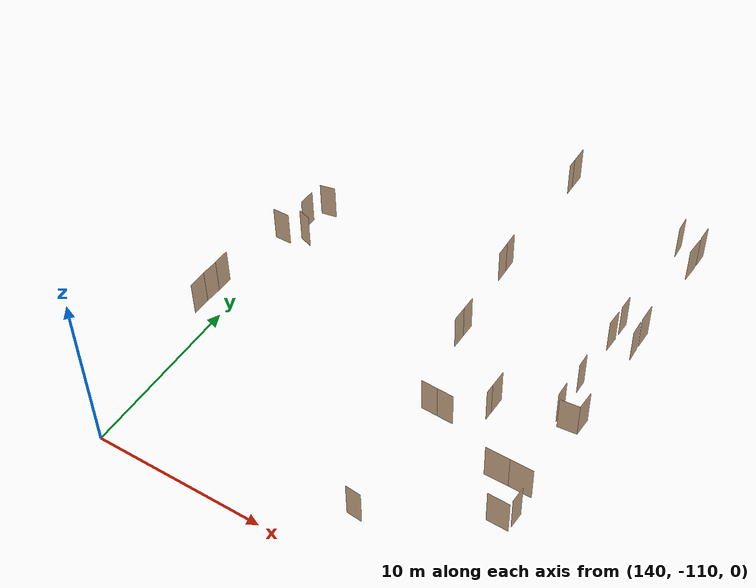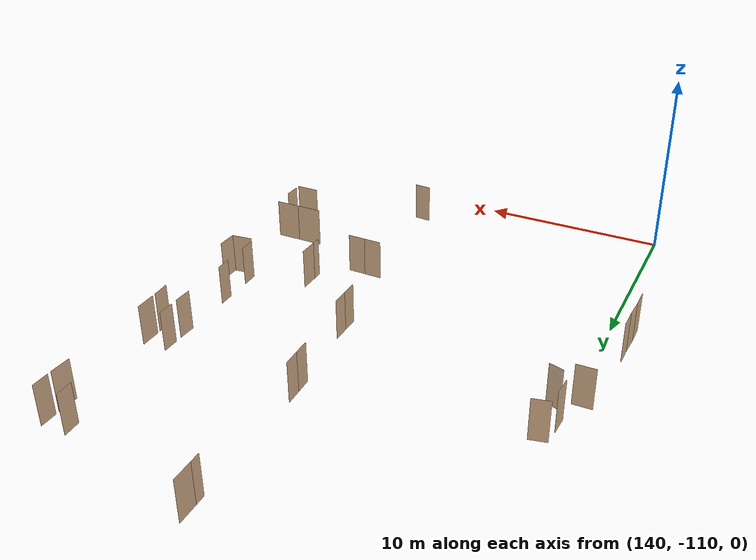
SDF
<sdf version="1.7">
 <world name="sim_world">
  <model name="puerta74">
   <pose>159.7936923329364 -103.79587595033634 0.0 0 0 3.1317567962634545</pose>
   <link name="right">
    <pose>0 0 1.11 0 0 0</pose>
    <visual name="right_visual">
     <geometry><box><size>1.256180677242002 0.03 2.2</size></box></geometry>
     <material>
      <ambient>0.5 0.25 0 0.6</ambient>
      <diffuse>0.5 0.25 0 0.6</diffuse>
      <pbr><metal><metalness>0.0</metalness></metal></pbr>
     </material>
    </visual>
    <collision name="right_collision">
     <geometry><box><size>1.256180677242002 0.03 2.2</size></box></geometry>
     <surface><contact><collide_bitmask>0x02</collide_bitmask></contact></surface>
    </collision>
    <inertial>
     <mass>50.0</mass>
     <inertia><ixx>20.17041666666667</ixx><iyy>26.741624557817403</iyy><izz>6.57870789115073</izz></inertia>
    </inertial>
   </link>
   <joint name="right_joint" type="revolute">
    <parent>world</parent>
    <child>right</child>
    <axis><xyz>0 0 -1</xyz><limit><lower>0</lower><upper>1.57</upper></limit></axis>
    <pose>0.6330903386210011 0 0 0 0 0</pose>
   </joint>
   <plugin name="register_component" filename="libregister_component.so">
    <component name="Door">
     <v_max_door>0.5</v_max_door>
     <a_max_door>0.3</a_max_door>
     <a_nom_door>0.15</a_nom_door>
     <dx_min_door>0.01</dx_min_door>
     <f_max_door>500.0</f_max_door>
     <ros_interface>true</ros_interface>
     <door name="puerta74" type="SwingDoor" left_joint_name="empty_joint" right_joint_name="right_joint"/>
    </component>
   </plugin>
  </model>
  <model name="puerta75">
   <pose>160.438532642766 -103.07871120292492 0.0 0 0 -1.5966220334203785</pose>
   <link name="right">
    <pose>0 0 1.11 0 0 0</pose>
    <visual name="right_visual">
     <geometry><box><size>0.9024168142661404 0.03 2.2</size></box></geometry>
     <material>
      <ambient>0.5 0.25 0 0.6</ambient>
      <diffuse>0.5 0.25 0 0.6</diffuse>
      <pbr><metal><metalness>0.0</metalness></metal></pbr>
     </material>
    </visual>
    <collision name="right_collision">
     <geometry><box><size>0.9024168142661404 0.03 2.2</size></box></geometry>
     <surface><contact><collide_bitmask>0x02</collide_bitmask></contact></surface>
    </collision>
    <inertial>
     <mass>50.0</mass>
     <inertia><ixx>20.17041666666667</ixx><iyy>23.559817111126044</iyy><izz>3.3969004444593742</izz></inertia>
    </inertial>
   </link>
   <joint name="right_joint" type="revolute">
    <parent>world</parent>
    <child>right</child>
    <axis><xyz>0 0 -1</xyz><limit><lower>0</lower><upper>1.57</upper></limit></axis>
    <pose>0.4562084071330702 0 0 0 0 0</pose>
   </joint>
   <plugin name="register_component" filename="libregister_component.so">
    <component name="Door">
     <v_max_door>0.5</v_max_door>
     <a_max_door>0.3</a_max_door>
     <a_nom_door>0.15</a_nom_door>
     <dx_min_door>0.01</dx_min_door>
     <f_max_door>500.0</f_max_door>
     <ros_interface>true</ros_interface>
     <door name="puerta75" type="SwingDoor" left_joint_name="empty_joint" right_joint_name="right_joint"/>
    </component>
   </plugin>
  </model>
  <model name="puerta76">
   <pose>159.75077730889134 -101.48174638903727 0.0 0 0 3.141592653589793</pose>
   <link name="right">
    <pose>0 0 1.11 0 0 0</pose>
    <visual name="right_visual">
     <geometry><box><size>1.3252042039894059 0.03 2.2</size></box></geometry>
     <material>
      <ambient>0.5 0.25 0 0.6</ambient>
      <diffuse>0.5 0.25 0 0.6</diffuse>
      <pbr><metal><metalness>0.0</metalness></metal></pbr>
     </material>
    </visual>
    <collision name="right_collision">
     <geometry><box><size>1.3252042039894059 0.03 2.2</size></box></geometry>
     <surface><contact><collide_bitmask>0x02</collide_bitmask></contact></surface>
    </collision>
    <inertial>
     <mass>50.0</mass>
     <inertia><ixx>20.17041666666667</ixx><iyy>27.484025759463318</iyy><izz>7.321109092796646</izz></inertia>
    </inertial>
   </link>
   <joint name="right_joint" type="revolute">
    <parent>world</parent>
    <child>right</child>
    <axis><xyz>0 0 -1</xyz><limit><lower>0</lower><upper>1.57</upper></limit></axis>
    <pose>0.6676021019947029 0 0 0 0 0</pose>
   </joint>
   <plugin name="register_component" filename="libregister_component.so">
    <component name="Door">
     <v_max_door>0.5</v_max_door>
     <a_max_door>0.3</a_max_door>
     <a_nom_door>0.15</a_nom_door>
     <dx_min_door>0.01</dx_min_door>
     <f_max_door>500.0</f_max_door>
     <ros_interface>true</ros_interface>
     <door name="puerta76" type="SwingDoor" left_joint_name="empty_joint" right_joint_name="right_joint"/>
    </component>
   </plugin>
  </model>
  <model name="puerta77">
   <pose>158.38399690338645 -101.48174638903727 0.0 0 0 0.0</pose>
   <link name="right">
    <pose>0 0 1.11 0 0 0</pose>
    <visual name="right_visual">
     <geometry><box><size>1.3883566070203892 0.03 2.2</size></box></geometry>
     <material>
      <ambient>0.5 0.25 0 0.6</ambient>
      <diffuse>0.5 0.25 0 0.6</diffuse>
      <pbr><metal><metalness>0.0</metalness></metal></pbr>
     </material>
    </visual>
    <collision name="right_collision">
     <geometry><box><size>1.3883566070203892 0.03 2.2</size></box></geometry>
     <surface><contact><collide_bitmask>0x02</collide_bitmask></contact></surface>
    </collision>
    <inertial>
     <mass>50.0</mass>
     <inertia><ixx>20.17041666666667</ixx><iyy>28.1980586177382</iyy><izz>8.03514195107153</izz></inertia>
    </inertial>
   </link>
   <joint name="right_joint" type="revolute">
    <parent>world</parent>
    <child>right</child>
    <axis><xyz>0 0 -1</xyz><limit><lower>0</lower><upper>1.57</upper></limit></axis>
    <pose>0.6991783035101946 0 0 0 0 0</pose>
   </joint>
   <plugin name="register_component" filename="libregister_component.so">
    <component name="Door">
     <v_max_door>0.5</v_max_door>
     <a_max_door>0.3</a_max_door>
     <a_nom_door>0.15</a_nom_door>
     <dx_min_door>0.01</dx_min_door>
     <f_max_door>500.0</f_max_door>
     <ros_interface>true</ros_interface>
     <door name="puerta77" type="SwingDoor" left_joint_name="empty_joint" right_joint_name="right_joint"/>
    </component>
   </plugin>
  </model>
  <model name="puerta78">
   <pose>159.89001973249628 -96.8544759949343 0.0 0 0 0.10396412360311867</pose>
   <link name="right">
    <pose>0 0 1.11 0 0 0</pose>
    <visual name="right_visual">
     <geometry><box><size>1.1166703581580366 0.03 2.2</size></box></geometry>
     <material>
      <ambient>0.5 0.25 0 0.6</ambient>
      <diffuse>0.5 0.25 0 0.6</diffuse>
      <pbr><metal><metalness>0.0</metalness></metal></pbr>
     </material>
    </visual>
    <collision name="right_collision">
     <geometry><box><size>1.1166703581580366 0.03 2.2</size></box></geometry>
     <surface><contact><collide_bitmask>0x02</collide_bitmask></contact></surface>
    </collision>
    <inertial>
     <mass>50.0</mass>
     <inertia><ixx>20.17041666666667</ixx><iyy>25.36230286995333</iyy><izz>5.199386203286657</izz></inertia>
    </inertial>
   </link>
   <joint name="right_joint" type="revolute">
    <parent>world</parent>
    <child>right</child>
    <axis><xyz>0 0 1</xyz><limit><lower>0</lower><upper>1.3955555555555557</upper></limit></axis>
    <pose>0.5633351790790183 0 0 0 0 0</pose>
   </joint>
   <plugin name="register_component" filename="libregister_component.so">
    <component name="Door">
     <v_max_door>0.5</v_max_door>
     <a_max_door>0.3</a_max_door>
     <a_nom_door>0.15</a_nom_door>
     <dx_min_door>0.01</dx_min_door>
     <f_max_door>500.0</f_max_door>
     <ros_interface>true</ros_interface>
     <door name="puerta78" type="SwingDoor" left_joint_name="empty_joint" right_joint_name="right_joint"/>
    </component>
   </plugin>
  </model>
  <model name="puerta79">
   <pose>160.46398714232214 -96.26128097139416 0.0 0 0 -1.596362178234018</pose>
   <link name="right">
    <pose>0 0 1.11 0 0 0</pose>
    <visual name="right_visual">
     <geometry><box><size>1.0598172473930818 0.03 2.2</size></box></geometry>
     <material>
      <ambient>0.5 0.25 0 0.6</ambient>
      <diffuse>0.5 0.25 0 0.6</diffuse>
      <pbr><metal><metalness>0.0</metalness></metal></pbr>
     </material>
    </visual>
    <collision name="right_collision">
     <geometry><box><size>1.0598172473930818 0.03 2.2</size></box></geometry>
     <surface><contact><collide_bitmask>0x02</collide_bitmask></contact></surface>
    </collision>
    <inertial>
     <mass>50.0</mass>
     <inertia><ixx>20.17041666666667</ixx><iyy>24.846719157799374</iyy><izz>4.683802491132703</izz></inertia>
    </inertial>
   </link>
   <joint name="right_joint" type="revolute">
    <parent>world</parent>
    <child>right</child>
    <axis><xyz>0 0 -1</xyz><limit><lower>0</lower><upper>1.57</upper></limit></axis>
    <pose>0.5349086236965409 0 0 0 0 0</pose>
   </joint>
   <plugin name="register_component" filename="libregister_component.so">
    <component name="Door">
     <v_max_door>0.5</v_max_door>
     <a_max_door>0.3</a_max_door>
     <a_nom_door>0.15</a_nom_door>
     <dx_min_door>0.01</dx_min_door>
     <f_max_door>500.0</f_max_door>
     <ros_interface>true</ros_interface>
     <door name="puerta79" type="SwingDoor" left_joint_name="empty_joint" right_joint_name="right_joint"/>
    </component>
   </plugin>
  </model>
  <model name="puerta80">
   <pose>159.1357461113518 -96.21222320861327 0.0 0 0 -1.5533127589746702</pose>
   <link name="right">
    <pose>0 0 1.11 0 0 0</pose>
    <visual name="right_visual">
     <geometry><box><size>0.8732167888799909 0.03 2.2</size></box></geometry>
     <material>
      <ambient>0.5 0.25 0 0.6</ambient>
      <diffuse>0.5 0.25 0 0.6</diffuse>
      <pbr><metal><metalness>0.0</metalness></metal></pbr>
     </material>
    </visual>
    <collision name="right_collision">
     <geometry><box><size>0.8732167888799909 0.03 2.2</size></box></geometry>
     <surface><contact><collide_bitmask>0x02</collide_bitmask></contact></surface>
    </collision>
    <inertial>
     <mass>50.0</mass>
     <inertia><ixx>20.17041666666667</ixx><iyy>23.34378150159118</iyy><izz>3.180864834924511</izz></inertia>
    </inertial>
   </link>
   <joint name="right_joint" type="revolute">
    <parent>world</parent>
    <child>right</child>
    <axis><xyz>0 0 1</xyz><limit><lower>0</lower><upper>1.57</upper></limit></axis>
    <pose>0.44160839443999544 0 0 0 0 0</pose>
   </joint>
   <plugin name="register_component" filename="libregister_component.so">
    <component name="Door">
     <v_max_door>0.5</v_max_door>
     <a_max_door>0.3</a_max_door>
     <a_nom_door>0.15</a_nom_door>
     <dx_min_door>0.01</dx_min_door>
     <f_max_door>500.0</f_max_door>
     <ros_interface>true</ros_interface>
     <door name="puerta80" type="SwingDoor" left_joint_name="empty_joint" right_joint_name="right_joint"/>
    </component>
   </plugin>
  </model>
  <model name="puerta81">
   <pose>159.12099933103045 -93.97853828062215 0.0 0 0 1.587739558421069</pose>
   <link name="right">
    <pose>0 0 1.11 0 0 0</pose>
    <visual name="right_visual">
     <geometry><box><size>0.8194308536880951 0.03 2.2</size></box></geometry>
     <material>
      <ambient>0.5 0.25 0 0.6</ambient>
      <diffuse>0.5 0.25 0 0.6</diffuse>
      <pbr><metal><metalness>0.0</metalness></metal></pbr>
     </material>
    </visual>
    <collision name="right_collision">
     <geometry><box><size>0.8194308536880951 0.03 2.2</size></box></geometry>
     <surface><contact><collide_bitmask>0x02</collide_bitmask></contact></surface>
    </collision>
    <inertial>
     <mass>50.0</mass>
     <inertia><ixx>20.17041666666667</ixx><iyy>22.964445516566673</iyy><izz>2.8015288499000013</izz></inertia>
    </inertial>
   </link>
   <joint name="right_joint" type="revolute">
    <parent>world</parent>
    <child>right</child>
    <axis><xyz>0 0 -1</xyz><limit><lower>0</lower><upper>1.57</upper></limit></axis>
    <pose>0.41471542684404755 0 0 0 0 0</pose>
   </joint>
   <plugin name="register_component" filename="libregister_component.so">
    <component name="Door">
     <v_max_door>0.5</v_max_door>
     <a_max_door>0.3</a_max_door>
     <a_nom_door>0.15</a_nom_door>
     <dx_min_door>0.01</dx_min_door>
     <f_max_door>500.0</f_max_door>
     <ros_interface>true</ros_interface>
     <door name="puerta81" type="SwingDoor" left_joint_name="empty_joint" right_joint_name="right_joint"/>
    </component>
   </plugin>
  </model>
  <model name="puerta82">
   <pose>160.45645597633776 -90.47160245541252 0.0 0 0 1.6164788078695695</pose>
   <link name="right">
    <pose>0 0 1.11 0 0 0</pose>
    <visual name="right_visual">
     <geometry><box><size>0.9186907120669721 0.03 2.2</size></box></geometry>
     <material>
      <ambient>0.5 0.25 0 0.6</ambient>
      <diffuse>0.5 0.25 0 0.6</diffuse>
      <pbr><metal><metalness>0.0</metalness></metal></pbr>
     </material>
    </visual>
    <collision name="right_collision">
     <geometry><box><size>0.9186907120669721 0.03 2.2</size></box></geometry>
     <surface><contact><collide_bitmask>0x02</collide_bitmask></contact></surface>
    </collision>
    <inertial>
     <mass>50.0</mass>
     <inertia><ixx>20.17041666666667</ixx><iyy>23.683302601825506</iyy><izz>3.5203859351588345</izz></inertia>
    </inertial>
   </link>
   <joint name="right_joint" type="revolute">
    <parent>world</parent>
    <child>right</child>
    <axis><xyz>0 0 1</xyz><limit><lower>0</lower><upper>1.57</upper></limit></axis>
    <pose>0.46434535603348603 0 0 0 0 0</pose>
   </joint>
   <plugin name="register_component" filename="libregister_component.so">
    <component name="Door">
     <v_max_door>0.5</v_max_door>
     <a_max_door>0.3</a_max_door>
     <a_nom_door>0.15</a_nom_door>
     <dx_min_door>0.01</dx_min_door>
     <f_max_door>500.0</f_max_door>
     <ros_interface>true</ros_interface>
     <door name="puerta82" type="SwingDoor" left_joint_name="empty_joint" right_joint_name="right_joint"/>
    </component>
   </plugin>
  </model>
  <model name="puerta83">
   <pose>159.1280466511555 -90.49268130545818 0.0 0 0 1.5417831272589189</pose>
   <link name="right">
    <pose>0 0 1.11 0 0 0</pose>
    <visual name="right_visual">
     <geometry><box><size>0.9602878923284857 0.03 2.2</size></box></geometry>
     <material>
      <ambient>0.5 0.25 0 0.6</ambient>
      <diffuse>0.5 0.25 0 0.6</diffuse>
      <pbr><metal><metalness>0.0</metalness></metal></pbr>
     </material>
    </visual>
    <collision name="right_collision">
     <geometry><box><size>0.9602878923284857 0.03 2.2</size></box></geometry>
     <surface><contact><collide_bitmask>0x02</collide_bitmask></contact></surface>
    </collision>
    <inertial>
     <mass>50.0</mass>
     <inertia><ixx>20.17041666666667</ixx><iyy>24.008970150636195</iyy><izz>3.846053483969522</izz></inertia>
    </inertial>
   </link>
   <joint name="right_joint" type="revolute">
    <parent>world</parent>
    <child>right</child>
    <axis><xyz>0 0 -1</xyz><limit><lower>0</lower><upper>1.57</upper></limit></axis>
    <pose>0.48514394616424283 0 0 0 0 0</pose>
   </joint>
   <plugin name="register_component" filename="libregister_component.so">
    <component name="Door">
     <v_max_door>0.5</v_max_door>
     <a_max_door>0.3</a_max_door>
     <a_nom_door>0.15</a_nom_door>
     <dx_min_door>0.01</dx_min_door>
     <f_max_door>500.0</f_max_door>
     <ros_interface>true</ros_interface>
     <door name="puerta83" type="SwingDoor" left_joint_name="empty_joint" right_joint_name="right_joint"/>
    </component>
   </plugin>
  </model>
  <model name="puerta84">
   <pose>159.14756877974068 -89.19532226237905 0.0 0 0 -1.582985679288863</pose>
   <link name="right">
    <pose>0 0 1.11 0 0 0</pose>
    <visual name="right_visual">
     <geometry><box><size>0.8840031950947633 0.03 2.2</size></box></geometry>
     <material>
      <ambient>0.5 0.25 0 0.6</ambient>
      <diffuse>0.5 0.25 0 0.6</diffuse>
      <pbr><metal><metalness>0.0</metalness></metal></pbr>
     </material>
    </visual>
    <collision name="right_collision">
     <geometry><box><size>0.8840031950947633 0.03 2.2</size></box></geometry>
     <surface><contact><collide_bitmask>0x02</collide_bitmask></contact></surface>
    </collision>
    <inertial>
     <mass>50.0</mass>
     <inertia><ixx>20.17041666666667</ixx><iyy>23.422756870573963</iyy><izz>3.2598402039072925</izz></inertia>
    </inertial>
   </link>
   <joint name="right_joint" type="revolute">
    <parent>world</parent>
    <child>right</child>
    <axis><xyz>0 0 1</xyz><limit><lower>0</lower><upper>1.57</upper></limit></axis>
    <pose>0.44700159754738167 0 0 0 0 0</pose>
   </joint>
   <plugin name="register_component" filename="libregister_component.so">
    <component name="Door">
     <v_max_door>0.5</v_max_door>
     <a_max_door>0.3</a_max_door>
     <a_nom_door>0.15</a_nom_door>
     <dx_min_door>0.01</dx_min_door>
     <f_max_door>500.0</f_max_door>
     <ros_interface>true</ros_interface>
     <door name="puerta84" type="SwingDoor" left_joint_name="empty_joint" right_joint_name="right_joint"/>
    </component>
   </plugin>
  </model>
  <model name="puerta85">
   <pose>160.43272649245404 -89.271496430059 0.0 0 0 -1.5662357016798674</pose>
   <link name="right">
    <pose>0 0 1.11 0 0 0</pose>
    <visual name="right_visual">
     <geometry><box><size>1.097050839072088 0.03 2.2</size></box></geometry>
     <material>
      <ambient>0.5 0.25 0 0.6</ambient>
      <diffuse>0.5 0.25 0 0.6</diffuse>
      <pbr><metal><metalness>0.0</metalness></metal></pbr>
     </material>
    </visual>
    <collision name="right_collision">
     <geometry><box><size>1.097050839072088 0.03 2.2</size></box></geometry>
     <surface><contact><collide_bitmask>0x02</collide_bitmask></contact></surface>
    </collision>
    <inertial>
     <mass>50.0</mass>
     <inertia><ixx>20.17041666666667</ixx><iyy>25.181335597953222</iyy><izz>5.018418931286551</izz></inertia>
    </inertial>
   </link>
   <joint name="right_joint" type="revolute">
    <parent>world</parent>
    <child>right</child>
    <axis><xyz>0 0 -1</xyz><limit><lower>0</lower><upper>1.57</upper></limit></axis>
    <pose>0.553525419536044 0 0 0 0 0</pose>
   </joint>
   <plugin name="register_component" filename="libregister_component.so">
    <component name="Door">
     <v_max_door>0.5</v_max_door>
     <a_max_door>0.3</a_max_door>
     <a_nom_door>0.15</a_nom_door>
     <dx_min_door>0.01</dx_min_door>
     <f_max_door>500.0</f_max_door>
     <ros_interface>true</ros_interface>
     <door name="puerta85" type="SwingDoor" left_joint_name="empty_joint" right_joint_name="right_joint"/>
    </component>
   </plugin>
  </model>
  <model name="puerta86">
   <pose>160.45538310073664 -83.41704567925645 0.0 0 0 1.524645002181131</pose>
   <link name="right">
    <pose>0 0 1.11 0 0 0</pose>
    <visual name="right_visual">
     <geometry><box><size>1.0816246900873259 0.03 2.2</size></box></geometry>
     <material>
      <ambient>0.5 0.25 0 0.6</ambient>
      <diffuse>0.5 0.25 0 0.6</diffuse>
      <pbr><metal><metalness>0.0</metalness></metal></pbr>
     </material>
    </visual>
    <collision name="right_collision">
     <geometry><box><size>1.0816246900873259 0.03 2.2</size></box></geometry>
     <surface><contact><collide_bitmask>0x02</collide_bitmask></contact></surface>
    </collision>
    <inertial>
     <mass>50.0</mass>
     <inertia><ixx>20.17041666666667</ixx><iyy>25.041299875860435</iyy><izz>4.878383209193766</izz></inertia>
    </inertial>
   </link>
   <joint name="right_joint" type="revolute">
    <parent>world</parent>
    <child>right</child>
    <axis><xyz>0 0 1</xyz><limit><lower>0</lower><upper>1.57</upper></limit></axis>
    <pose>0.5458123450436629 0 0 0 0 0</pose>
   </joint>
   <plugin name="register_component" filename="libregister_component.so">
    <component name="Door">
     <v_max_door>0.5</v_max_door>
     <a_max_door>0.3</a_max_door>
     <a_nom_door>0.15</a_nom_door>
     <dx_min_door>0.01</dx_min_door>
     <f_max_door>500.0</f_max_door>
     <ros_interface>true</ros_interface>
     <door name="puerta86" type="SwingDoor" left_joint_name="empty_joint" right_joint_name="right_joint"/>
    </component>
   </plugin>
  </model>
  <model name="puerta87">
   <pose>159.1257326057413 -82.19825899637743 0.0 0 0 -1.512059108779797</pose>
   <link name="right">
    <pose>0 0 1.11 0 0 0</pose>
    <visual name="right_visual">
     <geometry><box><size>0.9195773728870581 0.03 2.2</size></box></geometry>
     <material>
      <ambient>0.5 0.25 0 0.6</ambient>
      <diffuse>0.5 0.25 0 0.6</diffuse>
      <pbr><metal><metalness>0.0</metalness></metal></pbr>
     </material>
    </visual>
    <collision name="right_collision">
     <geometry><box><size>0.9195773728870581 0.03 2.2</size></box></geometry>
     <surface><contact><collide_bitmask>0x02</collide_bitmask></contact></surface>
    </collision>
    <inertial>
     <mass>50.0</mass>
     <inertia><ixx>20.17041666666667</ixx><iyy>23.69009393635777</iyy><izz>3.5271772696910983</izz></inertia>
    </inertial>
   </link>
   <joint name="right_joint" type="revolute">
    <parent>world</parent>
    <child>right</child>
    <axis><xyz>0 0 1</xyz><limit><lower>0</lower><upper>1.57</upper></limit></axis>
    <pose>0.46478868644352905 0 0 0 0 0</pose>
   </joint>
   <plugin name="register_component" filename="libregister_component.so">
    <component name="Door">
     <v_max_door>0.5</v_max_door>
     <a_max_door>0.3</a_max_door>
     <a_nom_door>0.15</a_nom_door>
     <dx_min_door>0.01</dx_min_door>
     <f_max_door>500.0</f_max_door>
     <ros_interface>true</ros_interface>
     <door name="puerta87" type="SwingDoor" left_joint_name="empty_joint" right_joint_name="right_joint"/>
    </component>
   </plugin>
  </model>
  <model name="puerta88">
   <pose>160.4764829875588 -82.2238817901455 0.0 0 0 -1.573382687183463</pose>
   <link name="right">
    <pose>0 0 1.11 0 0 0</pose>
    <visual name="right_visual">
     <geometry><box><size>0.9009796161264255 0.03 2.2</size></box></geometry>
     <material>
      <ambient>0.5 0.25 0 0.6</ambient>
      <diffuse>0.5 0.25 0 0.6</diffuse>
      <pbr><metal><metalness>0.0</metalness></metal></pbr>
     </material>
    </visual>
    <collision name="right_collision">
     <geometry><box><size>0.9009796161264255 0.03 2.2</size></box></geometry>
     <surface><contact><collide_bitmask>0x02</collide_bitmask></contact></surface>
    </collision>
    <inertial>
     <mass>50.0</mass>
     <inertia><ixx>20.17041666666667</ixx><iyy>23.549017786147175</iyy><izz>3.386101119480505</izz></inertia>
    </inertial>
   </link>
   <joint name="right_joint" type="revolute">
    <parent>world</parent>
    <child>right</child>
    <axis><xyz>0 0 -1</xyz><limit><lower>0</lower><upper>1.57</upper></limit></axis>
    <pose>0.45548980806321276 0 0 0 0 0</pose>
   </joint>
   <plugin name="register_component" filename="libregister_component.so">
    <component name="Door">
     <v_max_door>0.5</v_max_door>
     <a_max_door>0.3</a_max_door>
     <a_nom_door>0.15</a_nom_door>
     <dx_min_door>0.01</dx_min_door>
     <f_max_door>500.0</f_max_door>
     <ros_interface>true</ros_interface>
     <door name="puerta88" type="SwingDoor" left_joint_name="empty_joint" right_joint_name="right_joint"/>
    </component>
   </plugin>
  </model>
  <model name="puerta103">
   <pose>151.50204687835267 -80.52503586770389 0.0 0 0 1.5894869403281513</pose>
   <link name="right">
    <pose>0.2727684133909708 0 1.11 0 0 0</pose>
    <visual name="right_visual">
     <geometry><box><size>1.0810736535638832 0.03 2.2</size></box></geometry>
     <material>
      <ambient>0.5 0.25 0 0.6</ambient>
      <diffuse>0.5 0.25 0 0.6</diffuse>
      <pbr><metal><metalness>0.0</metalness></metal></pbr>
     </material>
    </visual>
    <collision name="right_collision">
     <geometry><box><size>1.0810736535638832 0.03 2.2</size></box></geometry>
     <surface><contact><collide_bitmask>0x02</collide_bitmask></contact></surface>
    </collision>
    <inertial>
     <mass>50.0</mass>
     <inertia><ixx>20.17041666666667</ixx><iyy>25.036334351791517</iyy><izz>4.873417685124846</izz></inertia>
    </inertial>
   </link>
   <joint name="right_joint" type="revolute">
    <parent>world</parent>
    <child>right</child>
    <axis><xyz>0 0 1</xyz><limit><lower>0</lower><upper>1.57</upper></limit></axis>
    <pose>0.5455368267819416 0 0 0 0 0</pose>
   </joint>
   <link name="left">
    <pose>-0.5455368267819416 0 1.11 0 0 0</pose>
    <visual name="left_visual">
     <geometry><box><size>0.5355368267819416 0.03 2.2</size></box></geometry>
     <material>
      <ambient>0.5 0.25 0 0.6</ambient>
      <diffuse>0.5 0.25 0 0.6</diffuse>
      <pbr><metal><metalness>0.0</metalness></metal></pbr>
     </material>
    </visual>
    <collision name="left_collision">
     <geometry><box><size>0.5355368267819416 0.03 2.2</size></box></geometry>
     <surface><contact><collide_bitmask>0x02</collide_bitmask></contact></surface>
    </collision>
    <inertial>
     <mass>50.0</mass>
     <inertia><ixx>20.17041666666667</ixx><iyy>21.36166538683197</iyy><izz>1.1987487201652973</izz></inertia>
    </inertial>
   </link>
   <joint name="left_joint" type="revolute">
    <parent>world</parent>
    <child>left</child>
    <axis><xyz>0 0 1</xyz><limit><lower>-1.57</lower><upper>0</upper></limit></axis>
    <pose>-0.2727684133909708 0 0 0 0 0</pose>
   </joint>
   <plugin name="register_component" filename="libregister_component.so">
    <component name="Door">
     <v_max_door>0.5</v_max_door>
     <a_max_door>0.3</a_max_door>
     <a_nom_door>0.15</a_nom_door>
     <dx_min_door>0.01</dx_min_door>
     <f_max_door>500.0</f_max_door>
     <ros_interface>true</ros_interface>
     <door name="puerta103" type="DoubleSwingDoor" left_joint_name="left_joint" right_joint_name="right_joint"/>
    </component>
   </plugin>
  </model>
  <model name="puerta104">
   <pose>151.5937882606372 -88.79854762095091 0.0 0 0 -1.5354115795646175</pose>
   <link name="right">
    <pose>0.4323028895662816 0 1.11 0 0 0</pose>
    <visual name="right_visual">
     <geometry><box><size>0.8546057791325632 0.03 2.2</size></box></geometry>
     <material>
      <ambient>0.5 0.25 0 0.6</ambient>
      <diffuse>0.5 0.25 0 0.6</diffuse>
      <pbr><metal><metalness>0.0</metalness></metal></pbr>
     </material>
    </visual>
    <collision name="right_collision">
     <geometry><box><size>0.8546057791325632 0.03 2.2</size></box></geometry>
     <surface><contact><collide_bitmask>0x02</collide_bitmask></contact></surface>
    </collision>
    <inertial>
     <mass>50.0</mass>
     <inertia><ixx>20.17041666666667</ixx><iyy>23.209795990528235</iyy><izz>3.0468793238615643</izz></inertia>
    </inertial>
   </link>
   <joint name="right_joint" type="revolute">
    <parent>world</parent>
    <child>right</child>
    <axis><xyz>0 0 -1</xyz><limit><lower>0</lower><upper>1.57</upper></limit></axis>
    <pose>0.4323028895662816 0 0 0 0 0</pose>
   </joint>
   <link name="left">
    <pose>-0.4323028895662816 0 1.11 0 0 0</pose>
    <visual name="left_visual">
     <geometry><box><size>0.8546057791325632 0.03 2.2</size></box></geometry>
     <material>
      <ambient>0.5 0.25 0 0.6</ambient>
      <diffuse>0.5 0.25 0 0.6</diffuse>
      <pbr><metal><metalness>0.0</metalness></metal></pbr>
     </material>
    </visual>
    <collision name="left_collision">
     <geometry><box><size>0.8546057791325632 0.03 2.2</size></box></geometry>
     <surface><contact><collide_bitmask>0x02</collide_bitmask></contact></surface>
    </collision>
    <inertial>
     <mass>50.0</mass>
     <inertia><ixx>20.17041666666667</ixx><iyy>23.209795990528235</iyy><izz>3.0468793238615643</izz></inertia>
    </inertial>
   </link>
   <joint name="left_joint" type="revolute">
    <parent>world</parent>
    <child>left</child>
    <axis><xyz>0 0 -1</xyz><limit><lower>-1.57</lower><upper>0</upper></limit></axis>
    <pose>-0.4323028895662816 0 0 0 0 0</pose>
   </joint>
   <plugin name="register_component" filename="libregister_component.so">
    <component name="Door">
     <v_max_door>0.5</v_max_door>
     <a_max_door>0.3</a_max_door>
     <a_nom_door>0.15</a_nom_door>
     <dx_min_door>0.01</dx_min_door>
     <f_max_door>500.0</f_max_door>
     <ros_interface>true</ros_interface>
     <door name="puerta104" type="DoubleSwingDoor" left_joint_name="left_joint" right_joint_name="right_joint"/>
    </component>
   </plugin>
  </model>
  <model name="puerta105">
   <pose>152.07287980848113 -94.21486542774073 0.0 0 0 -1.5707963267948966</pose>
   <link name="right">
    <pose>0.43580838021028256 0 1.11 0 0 0</pose>
    <visual name="right_visual">
     <geometry><box><size>0.8616167604205651 0.03 2.2</size></box></geometry>
     <material>
      <ambient>0.5 0.25 0 0.6</ambient>
      <diffuse>0.5 0.25 0 0.6</diffuse>
      <pbr><metal><metalness>0.0</metalness></metal></pbr>
     </material>
    </visual>
    <collision name="right_collision">
     <geometry><box><size>0.8616167604205651 0.03 2.2</size></box></geometry>
     <surface><contact><collide_bitmask>0x02</collide_bitmask></contact></surface>
    </collision>
    <inertial>
     <mass>50.0</mass>
     <inertia><ixx>20.17041666666667</ixx><iyy>23.259931007656796</iyy><izz>3.097014340990123</izz></inertia>
    </inertial>
   </link>
   <joint name="right_joint" type="revolute">
    <parent>world</parent>
    <child>right</child>
    <axis><xyz>0 0 -1</xyz><limit><lower>0</lower><upper>1.57</upper></limit></axis>
    <pose>0.43580838021028256 0 0 0 0 0</pose>
   </joint>
   <link name="left">
    <pose>-0.43580838021028256 0 1.11 0 0 0</pose>
    <visual name="left_visual">
     <geometry><box><size>0.8616167604205651 0.03 2.2</size></box></geometry>
     <material>
      <ambient>0.5 0.25 0 0.6</ambient>
      <diffuse>0.5 0.25 0 0.6</diffuse>
      <pbr><metal><metalness>0.0</metalness></metal></pbr>
     </material>
    </visual>
    <collision name="left_collision">
     <geometry><box><size>0.8616167604205651 0.03 2.2</size></box></geometry>
     <surface><contact><collide_bitmask>0x02</collide_bitmask></contact></surface>
    </collision>
    <inertial>
     <mass>50.0</mass>
     <inertia><ixx>20.17041666666667</ixx><iyy>23.259931007656796</iyy><izz>3.097014340990123</izz></inertia>
    </inertial>
   </link>
   <joint name="left_joint" type="revolute">
    <parent>world</parent>
    <child>left</child>
    <axis><xyz>0 0 -1</xyz><limit><lower>-1.57</lower><upper>0</upper></limit></axis>
    <pose>-0.43580838021028256 0 0 0 0 0</pose>
   </joint>
   <plugin name="register_component" filename="libregister_component.so">
    <component name="Door">
     <v_max_door>0.5</v_max_door>
     <a_max_door>0.3</a_max_door>
     <a_nom_door>0.15</a_nom_door>
     <dx_min_door>0.01</dx_min_door>
     <f_max_door>500.0</f_max_door>
     <ros_interface>true</ros_interface>
     <door name="puerta105" type="DoubleSwingDoor" left_joint_name="left_joint" right_joint_name="right_joint"/>
    </component>
   </plugin>
  </model>
  <model name="puerta106">
   <pose>153.74871149743979 -99.59914422393224 0.0 0 0 3.1137868440150647</pose>
   <link name="right">
    <pose>0.48161280064913925 0 1.11 0 0 0</pose>
    <visual name="right_visual">
     <geometry><box><size>0.9532256012982785 0.03 2.2</size></box></geometry>
     <material>
      <ambient>0.5 0.25 0 0.6</ambient>
      <diffuse>0.5 0.25 0 0.6</diffuse>
      <pbr><metal><metalness>0.0</metalness></metal></pbr>
     </material>
    </visual>
    <collision name="right_collision">
     <geometry><box><size>0.9532256012982785 0.03 2.2</size></box></geometry>
     <surface><contact><collide_bitmask>0x02</collide_bitmask></contact></surface>
    </collision>
    <inertial>
     <mass>50.0</mass>
     <inertia><ixx>20.17041666666667</ixx><iyy>23.952662695710274</iyy><izz>3.7897460290436027</izz></inertia>
    </inertial>
   </link>
   <joint name="right_joint" type="revolute">
    <parent>world</parent>
    <child>right</child>
    <axis><xyz>0 0 -1</xyz><limit><lower>0</lower><upper>1.57</upper></limit></axis>
    <pose>0.48161280064913925 0 0 0 0 0</pose>
   </joint>
   <link name="left">
    <pose>-0.48161280064913925 0 1.11 0 0 0</pose>
    <visual name="left_visual">
     <geometry><box><size>0.9532256012982785 0.03 2.2</size></box></geometry>
     <material>
      <ambient>0.5 0.25 0 0.6</ambient>
      <diffuse>0.5 0.25 0 0.6</diffuse>
      <pbr><metal><metalness>0.0</metalness></metal></pbr>
     </material>
    </visual>
    <collision name="left_collision">
     <geometry><box><size>0.9532256012982785 0.03 2.2</size></box></geometry>
     <surface><contact><collide_bitmask>0x02</collide_bitmask></contact></surface>
    </collision>
    <inertial>
     <mass>50.0</mass>
     <inertia><ixx>20.17041666666667</ixx><iyy>23.952662695710274</iyy><izz>3.7897460290436027</izz></inertia>
    </inertial>
   </link>
   <joint name="left_joint" type="revolute">
    <parent>world</parent>
    <child>left</child>
    <axis><xyz>0 0 -1</xyz><limit><lower>-1.57</lower><upper>0</upper></limit></axis>
    <pose>-0.48161280064913925 0 0 0 0 0</pose>
   </joint>
   <plugin name="register_component" filename="libregister_component.so">
    <component name="Door">
     <v_max_door>0.5</v_max_door>
     <a_max_door>0.3</a_max_door>
     <a_nom_door>0.15</a_nom_door>
     <dx_min_door>0.01</dx_min_door>
     <f_max_door>500.0</f_max_door>
     <ros_interface>true</ros_interface>
     <door name="puerta106" type="DoubleSwingDoor" left_joint_name="left_joint" right_joint_name="right_joint"/>
    </component>
   </plugin>
  </model>
  <model name="puerta107">
   <pose>153.63307233705962 -107.09196016476 0.0 0 0 3.055489605000088</pose>
   <link name="right">
    <pose>0 0 1.11 0 0 0</pose>
    <visual name="right_visual">
     <geometry><box><size>0.913696730952834 0.03 2.2</size></box></geometry>
     <material>
      <ambient>0.5 0.25 0 0.6</ambient>
      <diffuse>0.5 0.25 0 0.6</diffuse>
      <pbr><metal><metalness>0.0</metalness></metal></pbr>
     </material>
    </visual>
    <collision name="right_collision">
     <geometry><box><size>0.913696730952834 0.03 2.2</size></box></geometry>
     <surface><contact><collide_bitmask>0x02</collide_bitmask></contact></surface>
    </collision>
    <inertial>
     <mass>50.0</mass>
     <inertia><ixx>20.17041666666667</ixx><iyy>23.645173817307903</iyy><izz>3.482257150641231</izz></inertia>
    </inertial>
   </link>
   <joint name="right_joint" type="revolute">
    <parent>world</parent>
    <child>right</child>
    <axis><xyz>0 0 1</xyz><limit><lower>0</lower><upper>1.57</upper></limit></axis>
    <pose>0.461848365476417 0 0 0 0 0</pose>
   </joint>
   <plugin name="register_component" filename="libregister_component.so">
    <component name="Door">
     <v_max_door>0.5</v_max_door>
     <a_max_door>0.3</a_max_door>
     <a_nom_door>0.15</a_nom_door>
     <dx_min_door>0.01</dx_min_door>
     <f_max_door>500.0</f_max_door>
     <ros_interface>true</ros_interface>
     <door name="puerta107" type="SwingDoor" left_joint_name="empty_joint" right_joint_name="right_joint"/>
    </component>
   </plugin>
  </model>
  <model name="puerta108">
   <pose>139.5671052133339 -93.43841904417299 0.0 0 0 0.00852679551711092</pose>
   <link name="right">
    <pose>0 0 1.11 0 0 0</pose>
    <visual name="right_visual">
     <geometry><box><size>0.9966042746061976 0.03 2.2</size></box></geometry>
     <material>
      <ambient>0.5 0.25 0 0.6</ambient>
      <diffuse>0.5 0.25 0 0.6</diffuse>
      <pbr><metal><metalness>0.0</metalness></metal></pbr>
     </material>
    </visual>
    <collision name="right_collision">
     <geometry><box><size>0.9966042746061976 0.03 2.2</size></box></geometry>
     <surface><contact><collide_bitmask>0x02</collide_bitmask></contact></surface>
    </collision>
    <inertial>
     <mass>50.0</mass>
     <inertia><ixx>20.17041666666667</ixx><iyy>24.305083667347276</iyy><izz>4.1421670006806055</izz></inertia>
    </inertial>
   </link>
   <joint name="right_joint" type="revolute">
    <parent>world</parent>
    <child>right</child>
    <axis><xyz>0 0 -1</xyz><limit><lower>0</lower><upper>1.57</upper></limit></axis>
    <pose>0.5033021373030988 0 0 0 0 0</pose>
   </joint>
   <plugin name="register_component" filename="libregister_component.so">
    <component name="Door">
     <v_max_door>0.5</v_max_door>
     <a_max_door>0.3</a_max_door>
     <a_nom_door>0.15</a_nom_door>
     <dx_min_door>0.01</dx_min_door>
     <f_max_door>500.0</f_max_door>
     <ros_interface>true</ros_interface>
     <door name="puerta108" type="SwingDoor" left_joint_name="empty_joint" right_joint_name="right_joint"/>
    </component>
   </plugin>
  </model>
  <model name="puerta158">
   <pose>138.77877305104778 -100.06268959394811 0.0 0 0 1.5707963267948966</pose>
   <link name="right">
    <pose>0 0 1.11 0 0 0</pose>
    <visual name="right_visual">
     <geometry><box><size>1.0825660239230268 0.03 2.2</size></box></geometry>
     <material>
      <ambient>0.5 0.25 0 0.6</ambient>
      <diffuse>0.5 0.25 0 0.6</diffuse>
      <pbr><metal><metalness>0.0</metalness></metal></pbr>
     </material>
    </visual>
    <collision name="right_collision">
     <geometry><box><size>1.0825660239230268 0.03 2.2</size></box></geometry>
     <surface><contact><collide_bitmask>0x02</collide_bitmask></contact></surface>
    </collision>
    <inertial>
     <mass>50.0</mass>
     <inertia><ixx>20.17041666666667</ixx><iyy>25.049788317302138</iyy><izz>4.886871650635465</izz></inertia>
    </inertial>
   </link>
   <joint name="right_joint" type="revolute">
    <parent>world</parent>
    <child>right</child>
    <axis><xyz>0 0 1</xyz><limit><lower>0</lower><upper>1.57</upper></limit></axis>
    <pose>0.5462830119615134 0 0 0 0 0</pose>
   </joint>
   <plugin name="register_component" filename="libregister_component.so">
    <component name="Door">
     <v_max_door>0.5</v_max_door>
     <a_max_door>0.3</a_max_door>
     <a_nom_door>0.15</a_nom_door>
     <dx_min_door>0.01</dx_min_door>
     <f_max_door>500.0</f_max_door>
     <ros_interface>true</ros_interface>
     <door name="puerta158" type="SwingDoor" left_joint_name="empty_joint" right_joint_name="right_joint"/>
    </component>
   </plugin>
  </model>
  <model name="puerta159">
   <pose>138.80753032451327 -99.02761708017954 0.0 0 0 1.5120304122943606</pose>
   <link name="right">
    <pose>0 0 1.11 0 0 0</pose>
    <visual name="right_visual">
     <geometry><box><size>0.969269437599189 0.03 2.2</size></box></geometry>
     <material>
      <ambient>0.5 0.25 0 0.6</ambient>
      <diffuse>0.5 0.25 0 0.6</diffuse>
      <pbr><metal><metalness>0.0</metalness></metal></pbr>
     </material>
    </visual>
    <collision name="right_collision">
     <geometry><box><size>0.969269437599189 0.03 2.2</size></box></geometry>
     <surface><contact><collide_bitmask>0x02</collide_bitmask></contact></surface>
    </collision>
    <inertial>
     <mass>50.0</mass>
     <inertia><ixx>20.17041666666667</ixx><iyy>24.08118017776604</iyy><izz>3.9182635110993678</izz></inertia>
    </inertial>
   </link>
   <joint name="right_joint" type="revolute">
    <parent>world</parent>
    <child>right</child>
    <axis><xyz>0 0 1</xyz><limit><lower>0</lower><upper>1.57</upper></limit></axis>
    <pose>0.4896347187995945 0 0 0 0 0</pose>
   </joint>
   <plugin name="register_component" filename="libregister_component.so">
    <component name="Door">
     <v_max_door>0.5</v_max_door>
     <a_max_door>0.3</a_max_door>
     <a_nom_door>0.15</a_nom_door>
     <dx_min_door>0.01</dx_min_door>
     <f_max_door>500.0</f_max_door>
     <ros_interface>true</ros_interface>
     <door name="puerta159" type="SwingDoor" left_joint_name="empty_joint" right_joint_name="right_joint"/>
    </component>
   </plugin>
  </model>
  <model name="puerta160">
   <pose>138.84232515283213 -98.04970148814152 0.0 0 0 1.5584533985235027</pose>
   <link name="right">
    <pose>0 0 1.11 0 0 0</pose>
    <visual name="right_visual">
     <geometry><box><size>0.9683267025144926 0.03 2.2</size></box></geometry>
     <material>
      <ambient>0.5 0.25 0 0.6</ambient>
      <diffuse>0.5 0.25 0 0.6</diffuse>
      <pbr><metal><metalness>0.0</metalness></metal></pbr>
     </material>
    </visual>
    <collision name="right_collision">
     <geometry><box><size>0.9683267025144926 0.03 2.2</size></box></geometry>
     <surface><contact><collide_bitmask>0x02</collide_bitmask></contact></surface>
    </collision>
    <inertial>
     <mass>50.0</mass>
     <inertia><ixx>20.17041666666667</ixx><iyy>24.073569178344133</iyy><izz>3.9106525116774615</izz></inertia>
    </inertial>
   </link>
   <joint name="right_joint" type="revolute">
    <parent>world</parent>
    <child>right</child>
    <axis><xyz>0 0 1</xyz><limit><lower>0</lower><upper>1.57</upper></limit></axis>
    <pose>0.4891633512572463 0 0 0 0 0</pose>
   </joint>
   <plugin name="register_component" filename="libregister_component.so">
    <component name="Door">
     <v_max_door>0.5</v_max_door>
     <a_max_door>0.3</a_max_door>
     <a_nom_door>0.15</a_nom_door>
     <dx_min_door>0.01</dx_min_door>
     <f_max_door>500.0</f_max_door>
     <ros_interface>true</ros_interface>
     <door name="puerta160" type="SwingDoor" left_joint_name="empty_joint" right_joint_name="right_joint"/>
    </component>
   </plugin>
  </model>
  <model name="puerta167">
   <pose>140.09407646447517 -91.66287303463912 0.0 0 0 -1.6193847600354792</pose>
   <link name="right">
    <pose>0 0 1.11 0 0 0</pose>
    <visual name="right_visual">
     <geometry><box><size>0.9654063535677858 0.03 2.2</size></box></geometry>
     <material>
      <ambient>0.5 0.25 0 0.6</ambient>
      <diffuse>0.5 0.25 0 0.6</diffuse>
      <pbr><metal><metalness>0.0</metalness></metal></pbr>
     </material>
    </visual>
    <collision name="right_collision">
     <geometry><box><size>0.9654063535677858 0.03 2.2</size></box></geometry>
     <surface><contact><collide_bitmask>0x02</collide_bitmask></contact></surface>
    </collision>
    <inertial>
     <mass>50.0</mass>
     <inertia><ixx>20.17041666666667</ixx><iyy>24.050039281287706</iyy><izz>3.8871226146210365</izz></inertia>
    </inertial>
   </link>
   <joint name="right_joint" type="revolute">
    <parent>world</parent>
    <child>right</child>
    <axis><xyz>0 0 1</xyz><limit><lower>0</lower><upper>1.57</upper></limit></axis>
    <pose>0.4877031767838929 0 0 0 0 0</pose>
   </joint>
   <plugin name="register_component" filename="libregister_component.so">
    <component name="Door">
     <v_max_door>0.5</v_max_door>
     <a_max_door>0.3</a_max_door>
     <a_nom_door>0.15</a_nom_door>
     <dx_min_door>0.01</dx_min_door>
     <f_max_door>500.0</f_max_door>
     <ros_interface>true</ros_interface>
     <door name="puerta167" type="SwingDoor" left_joint_name="empty_joint" right_joint_name="right_joint"/>
    </component>
   </plugin>
  </model>
  <model name="puerta168">
   <pose>140.6153046756339 -90.34075370562815 0.0 0 0 -2.9284478798505345</pose>
   <link name="right">
    <pose>0 0 1.11 0 0 0</pose>
    <visual name="right_visual">
     <geometry><box><size>0.9053232458259489 0.03 2.2</size></box></geometry>
     <material>
      <ambient>0.5 0.25 0 0.6</ambient>
      <diffuse>0.5 0.25 0 0.6</diffuse>
      <pbr><metal><metalness>0.0</metalness></metal></pbr>
     </material>
    </visual>
    <collision name="right_collision">
     <geometry><box><size>0.9053232458259489 0.03 2.2</size></box></geometry>
     <surface><contact><collide_bitmask>0x02</collide_bitmask></contact></surface>
    </collision>
    <inertial>
     <mass>50.0</mass>
     <inertia><ixx>20.17041666666667</ixx><iyy>23.581709080970136</iyy><izz>3.418792414303465</izz></inertia>
    </inertial>
   </link>
   <joint name="right_joint" type="revolute">
    <parent>world</parent>
    <child>right</child>
    <axis><xyz>0 0 1</xyz><limit><lower>0</lower><upper>1.2211111111111113</upper></limit></axis>
    <pose>0.45766162291297446 0 0 0 0 0</pose>
   </joint>
   <plugin name="register_component" filename="libregister_component.so">
    <component name="Door">
     <v_max_door>0.5</v_max_door>
     <a_max_door>0.3</a_max_door>
     <a_nom_door>0.15</a_nom_door>
     <dx_min_door>0.01</dx_min_door>
     <f_max_door>500.0</f_max_door>
     <ros_interface>true</ros_interface>
     <door name="puerta168" type="SwingDoor" left_joint_name="empty_joint" right_joint_name="right_joint"/>
    </component>
   </plugin>
  </model>
  <model name="puerta169">
   <pose>140.7538318488381 -92.87124651315426 0.0 0 0 2.8404333758325078</pose>
   <link name="right">
    <pose>0 0 1.11 0 0 0</pose>
    <visual name="right_visual">
     <geometry><box><size>0.7725295544783084 0.03 2.2</size></box></geometry>
     <material>
      <ambient>0.5 0.25 0 0.6</ambient>
      <diffuse>0.5 0.25 0 0.6</diffuse>
      <pbr><metal><metalness>0.0</metalness></metal></pbr>
     </material>
    </visual>
    <collision name="right_collision">
     <geometry><box><size>0.7725295544783084 0.03 2.2</size></box></geometry>
     <surface><contact><collide_bitmask>0x02</collide_bitmask></contact></surface>
    </collision>
    <inertial>
     <mass>50.0</mass>
     <inertia><ixx>20.17041666666667</ixx><iyy>22.653341302260227</iyy><izz>2.490424635593557</izz></inertia>
    </inertial>
   </link>
   <joint name="right_joint" type="revolute">
    <parent>world</parent>
    <child>right</child>
    <axis><xyz>0 0 -1</xyz><limit><lower>0</lower><upper>1.2211111111111113</upper></limit></axis>
    <pose>0.3912647772391542 0 0 0 0 0</pose>
   </joint>
   <plugin name="register_component" filename="libregister_component.so">
    <component name="Door">
     <v_max_door>0.5</v_max_door>
     <a_max_door>0.3</a_max_door>
     <a_nom_door>0.15</a_nom_door>
     <dx_min_door>0.01</dx_min_door>
     <f_max_door>500.0</f_max_door>
     <ros_interface>true</ros_interface>
     <door name="puerta169" type="SwingDoor" left_joint_name="empty_joint" right_joint_name="right_joint"/>
    </component>
   </plugin>
  </model>
  <model name="puerta171">
   <pose>156.02320777182666 -97.68711160851396 0.0 0 0 1.5575365947351327</pose>
   <link name="right">
    <pose>0.2580808248521973 0 1.11 0 0 0</pose>
    <visual name="right_visual">
     <geometry><box><size>1.022323299408789 0.03 2.2</size></box></geometry>
     <material>
      <ambient>0.5 0.25 0 0.6</ambient>
      <diffuse>0.5 0.25 0 0.6</diffuse>
      <pbr><metal><metalness>0.0</metalness></metal></pbr>
     </material>
    </visual>
    <collision name="right_collision">
     <geometry><box><size>1.022323299408789 0.03 2.2</size></box></geometry>
     <surface><contact><collide_bitmask>0x02</collide_bitmask></contact></surface>
    </collision>
    <inertial>
     <mass>50.0</mass>
     <inertia><ixx>20.17041666666667</ixx><iyy>24.52143720214197</iyy><izz>4.358520535475302</izz></inertia>
    </inertial>
   </link>
   <joint name="right_joint" type="revolute">
    <parent>world</parent>
    <child>right</child>
    <axis><xyz>0 0 -1</xyz><limit><lower>0</lower><upper>1.57</upper></limit></axis>
    <pose>0.5161616497043945 0 0 0 0 0</pose>
   </joint>
   <link name="left">
    <pose>-0.5161616497043945 0 1.11 0 0 0</pose>
    <visual name="left_visual">
     <geometry><box><size>0.5061616497043946 0.03 2.2</size></box></geometry>
     <material>
      <ambient>0.5 0.25 0 0.6</ambient>
      <diffuse>0.5 0.25 0 0.6</diffuse>
      <pbr><metal><metalness>0.0</metalness></metal></pbr>
     </material>
    </visual>
    <collision name="left_collision">
     <geometry><box><size>0.5061616497043946 0.03 2.2</size></box></geometry>
     <surface><contact><collide_bitmask>0x02</collide_bitmask></contact></surface>
    </collision>
    <inertial>
     <mass>50.0</mass>
     <inertia><ixx>20.17041666666667</ixx><iyy>21.234165065131148</iyy><izz>1.0712483984644763</izz></inertia>
    </inertial>
   </link>
   <joint name="left_joint" type="revolute">
    <parent>world</parent>
    <child>left</child>
    <axis><xyz>0 0 -1</xyz><limit><lower>-1.57</lower><upper>0</upper></limit></axis>
    <pose>-0.2580808248521973 0 0 0 0 0</pose>
   </joint>
   <plugin name="register_component" filename="libregister_component.so">
    <component name="Door">
     <v_max_door>0.5</v_max_door>
     <a_max_door>0.3</a_max_door>
     <a_nom_door>0.15</a_nom_door>
     <dx_min_door>0.01</dx_min_door>
     <f_max_door>500.0</f_max_door>
     <ros_interface>true</ros_interface>
     <door name="puerta171" type="DoubleSwingDoor" left_joint_name="left_joint" right_joint_name="right_joint"/>
    </component>
   </plugin>
  </model>
 </world>
</sdf>
